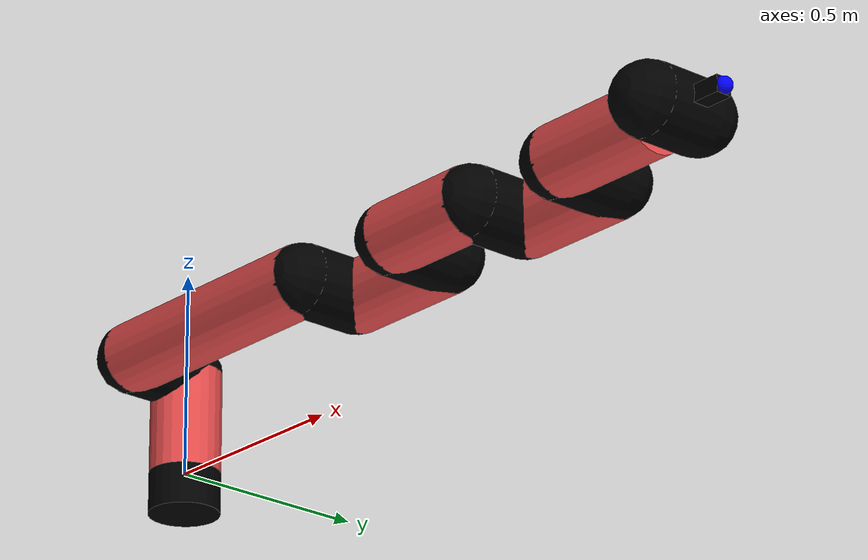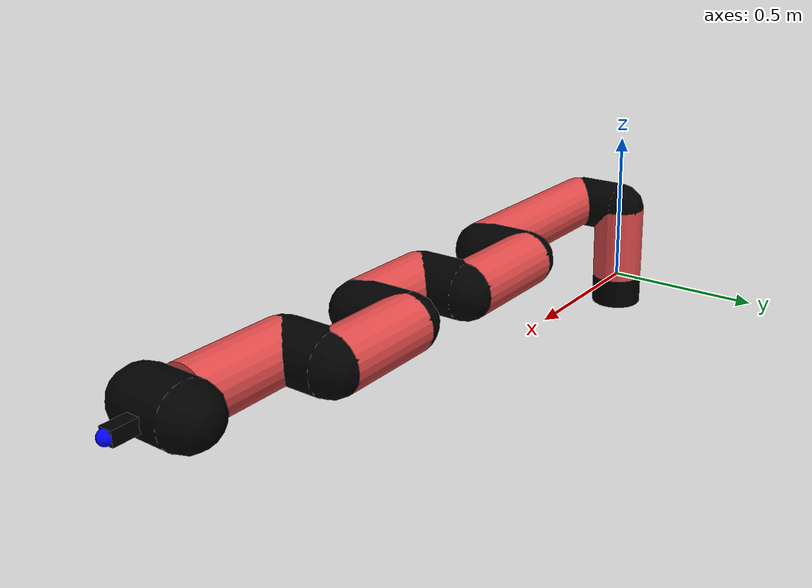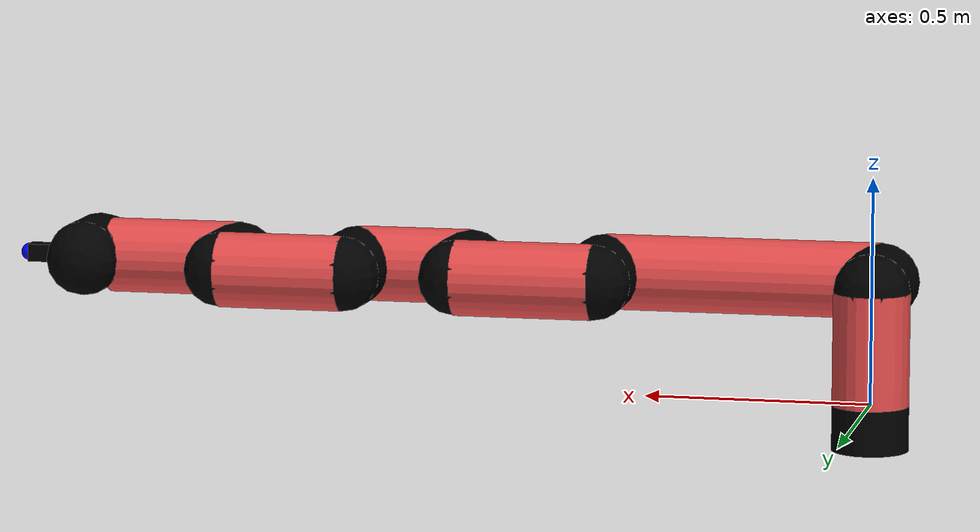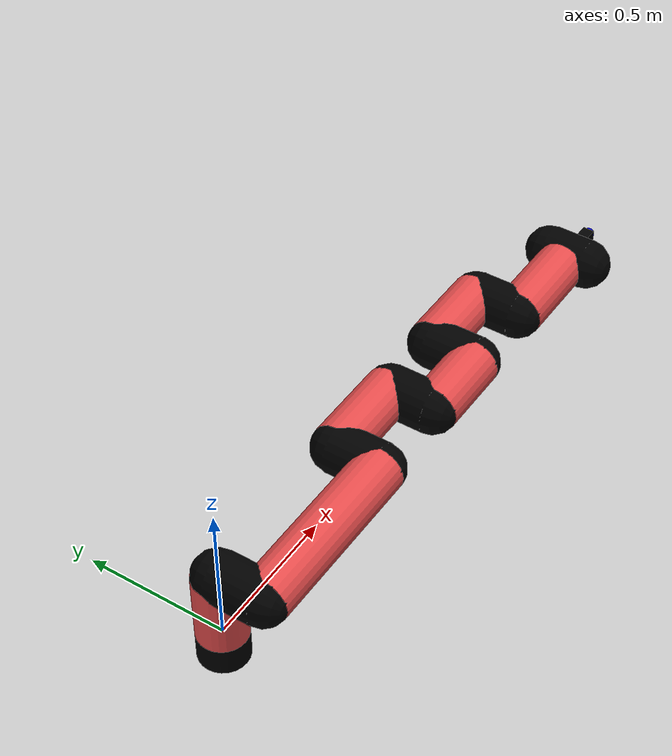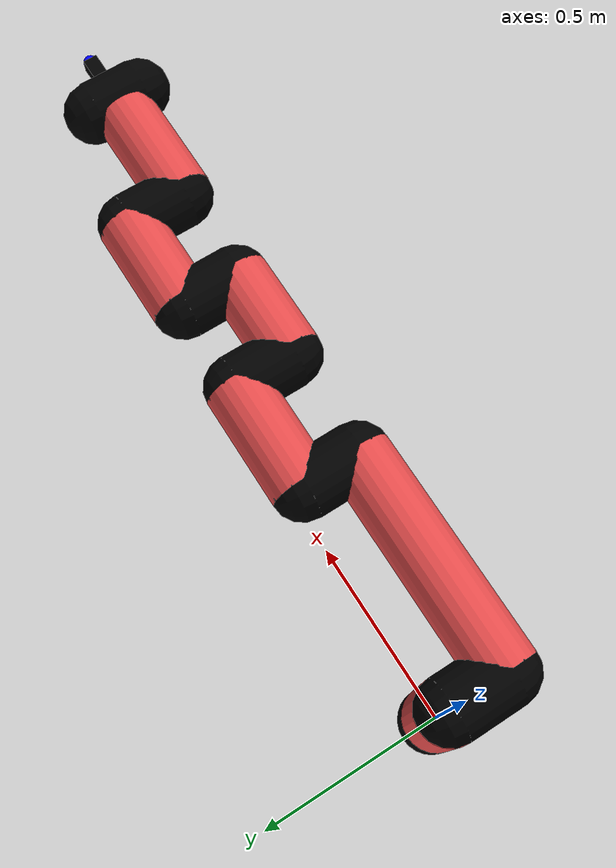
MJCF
<mujoco model="manipulator">
		<compiler angle="degree" coordinate="local" inertiafromgeom="auto" meshdir="meshes/"/>
		<option gravity="0 0 0" integrator="RK4" iterations="30" timestep="0.01"/>

		<default>
		<joint armature="1" limited="true" stiffness="10" damping="15" frictionloss="5.0"/>
		<geom conaffinity="1" condim="3" contype="1" friction=".5 .1 .1" margin="0.002"/>
		<motor ctrllimited="true"/>
		<position ctrllimited="true"/>
		</default>

		<asset>
		<texture builtin="gradient" height="100" rgb1="1.0 1.0 1.0" rgb2="1.0 1.0 1.0" type="skybox" width="100"/>
		<texture builtin="flat" height="32" name="arm_tex" rgb1="0.9 0.3 0.3" type="2d" width="32"/>
		<texture builtin="flat" height="32" name="gripper_tex" rgb1="0.0 0.0 0.0" type="cube" width="32"/>

		<material name="arm_mat" shininess="0.1" specular="0.1" texture="arm_tex"/>
		<material name="gripper_mat" shininess="1" specular="1" texture="gripper_tex"/>
		</asset>

		<worldbody>
		<light cutoff="45" diffuse=".8 .8 .8" dir="0 0.16 -1" directional="false" name="light" pos="0 -2.0 8.0" specular="0.3 0.3 0.3"/>

		<body name="base_link" pos="0 0 -0.1">
		<geom fromto="0 0 0 0 0 0.1" material="arm_mat" name="base_link" rgba="0.0 0.0 0.0 1" size="0.085" type="cylinder"/>
		</body>

		<body name="l1" pos="0 0 0">
<geom fromto="0 0 0 0 0 0.25" material="arm_mat" name="l1" rgba="0.9 0.3 0.3 1" size="0.085" type="cylinder"/>
<geom fromto="0 0 0.25 0 -0.16 0.25" material="arm_mat" name="l1_ex" rgba="0.0 0.0 0.0 1" size="0.085" type="capsule"/>
<joint axis="0 0 1" name="j1" pos="0 0 0" range="-90 90" damping="32.9" frictionloss="9.81"/>

<body name="l2" pos="0 -0.16 0.25">
<geom fromto="0 0 0 0.62 0 0" material="arm_mat" name="l2" rgba="0.9 0.3 0.3 1" size="0.085" type="cylinder"/>
<geom fromto="0.62 0 0 0.62 0.16 0" material="arm_mat" name="l2_ex" rgba="0.0 0.0 0.0 1" size="0.085" type="capsule"/>
<joint axis="0.0 1.0 0.0" name="j2" pos="0 0 0" range="-90 60" damping="30.23" frictionloss="12.11"/>

<body name="l3" pos="0.62 0.16 0">
<geom fromto="0 0 0 0.31 0 0" material="arm_mat" name="l3" rgba="0.9 0.3 0.3 1" size="0.085" type="cylinder"/>
<geom fromto="0.31 0 0 0.31 -0.16 0" material="arm_mat" name="l3_ex" rgba="0.0 0.0 0.0 1" size="0.085" type="capsule"/>
<joint axis="0.0 1.0 0.0" name="j3" pos="0 0 0" range="-30 60" damping="26.12" frictionloss="11.5"/>

<body name="l4" pos="0.31 -0.16 0">
<geom fromto="0 0 0 0.26 0 0" material="arm_mat" name="l4" rgba="0.9 0.3 0.3 1" size="0.085" type="cylinder"/>
<geom fromto="0.26 0 0 0.26 0.16 0" material="arm_mat" name="l4_ex" rgba="0.0 0.0 0.0 1" size="0.085" type="capsule"/>
<joint axis="0.0 1.0 0.0" name="j4" pos="0 0 0" range="-30 60" damping="36.69" frictionloss="10.18"/>

<body name="l5" pos="0.26 0.16 0">
<geom fromto="0 0 0 0.28 0 0" material="arm_mat" name="l5" rgba="0.9 0.3 0.3 1" size="0.085" type="cylinder"/>
<geom fromto="0.28 0 0 0.28 -0.16 0" material="arm_mat" name="l5_ex" rgba="0.0 0.0 0.0 1" size="0.085" type="capsule"/>
<joint axis="0.0 1.0 0.0" name="j5" pos="0 0 0" range="-30 60" damping="37.15" frictionloss="12.36"/>

<body name="l6" pos="0.28 -0.16 0">
<geom fromto="0 0 0 0.3 0 0" material="arm_mat" name="l6" rgba="0.9 0.3 0.3 1" size="0.085" type="cylinder"/>
<joint axis="0.0 1.0 0.0" name="j6" pos="0 0 0" range="-30 60" damping="24.49" frictionloss="9.63"/>

<body name="gripper" pos="0.3 0 0">
<geom fromto="0.05 -0.07 0 0.05 0.07 0" material="gripper_mat" name="gripper" rgba="0.0 0.0 0.0 1" size="0.085" type="capsule"/><joint axis="1 0 0" name="j7" pos="0 0 0" range="-90 90" damping="15" frictionloss="5.0"/><body name="finger" pos="0.1 0 0">
<geom fromto="0 0.0 0 0.1 0.0 0" material="gripper_mat" name="finger" rgba="0.0 0.0 0.0 1" size="0.020 0.06 0.06" type="box"/>
</body>
<site name="current" pos="0.2 0. 0.0" rgba="0. 0. 1.0 1" size="0.02" type="sphere"/>
</body>
</body>
</body>
</body>
</body>
</body>
</body>
</worldbody>
<actuator>
<motor ctrllimited="true" ctrlrange="-1.0 1.0" joint="j1" gear="73.79"/>
<motor ctrllimited="true" ctrlrange="-1.0 1.0" joint="j2" gear="68.71"/>
<motor ctrllimited="true" ctrlrange="-1.0 1.0" joint="j3" gear="62.53"/>
<motor ctrllimited="true" ctrlrange="-1.0 1.0" joint="j4" gear="78.55"/>
<motor ctrllimited="true" ctrlrange="-1.0 1.0" joint="j5" gear="79.67"/>
<motor ctrllimited="true" ctrlrange="-1.0 1.0" joint="j6" gear="67.48"/>
<motor ctrllimited="true" ctrlrange="-1.0 1.0" joint="j7" gear="80"/>
</actuator>
</mujoco>
